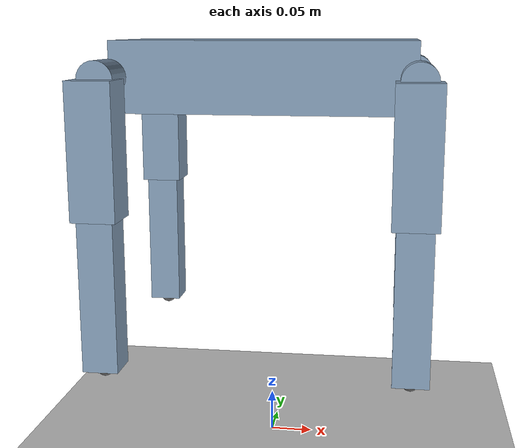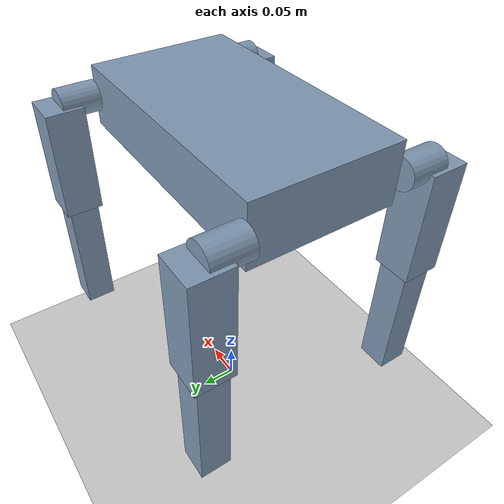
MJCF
<!-- quadruped_mujoco/models/mjcf/yobotics.xml -->
<mujoco model="yobotics">
    <compiler
        angle="degree"
        inertiafromgeom="true"
        coordinate="local"
        meshdir="../meshes/"
    />

    <option
        timestep="0.001"
        iterations="50"
        solver="Newton"
        tolerance="1e-10"
        gravity="0 0 -9.81"
    />

    <default>
        <joint limited="true" damping="0.1" armature="0.01"/>
        <motor ctrllimited="true" ctrlrange="-33.5 33.5"/>
        <geom contype="1" conaffinity="1" friction="1.0 0.1 0.1" rgba="0.5 0.6 0.7 1"/>
    </default>

    <asset>
        <mesh name="trunk" file="base.stl" scale="0.001 0.001 0.001"/>
        <mesh name="hip" file="hip.stl" scale="0.001 0.001 0.001"/>
        <mesh name="thigh" file="upper_leg.stl" scale="0.001 0.001 0.001"/>
        <mesh name="calf" file="lower_leg.stl" scale="0.001 0.001 0.001"/>

        <material name="black" rgba="0.0 0.0 0.0 1.0"/>
        <material name="blue" rgba="0.0 0.0 0.7 1.0"/>
        <material name="green" rgba="0.0 0.7 0.0 1.0"/>
        <material name="gray" rgba="0.5 0.5 0.5 1.0"/>
        <material name="red" rgba="0.7 0.0 0.0 1.0"/>
        <material name="white" rgba="1.0 1.0 1.0 1.0"/>
        <material name="yellow" rgba="0.7 0.7 0.0 1.0"/>
    </asset>

    <worldbody>
        <light diffuse=".5 .5 .5" pos="0 0 3" dir="0 0 -1"/>
        <geom type="plane" size="15 15 0.1" rgba="0.8 0.8 0.8 1" pos="0 0 0"/>

        <!-- Robot body -->
        <body name="trunk" pos="0 0 0.45">
            <joint type="free"/>
            <geom type="box" size="0.17 0.095 0.04" material="blue" mass="6.0"/>
            <site name="imu" pos="0 0 0" size="0.01"/>

            <!-- Front Right Leg -->
            <body name="FR_hip" pos="0.17 -0.095 0">
                <joint name="FR_hip_joint" type="hinge" axis="0 0 1" range="-40 40"/>
                <geom type="cylinder" size="0.02" fromto="0 0 0 0 -0.05 0" material="gray"/>

                <body name="FR_thigh" pos="0 -0.05 0">
                    <joint name="FR_thigh_joint" type="hinge" axis="1 0 0" range="-40 40"/>
                    <geom type="box" size="0.025 0.025 0.075" pos="0 0 -0.075" material="gray"/>

                    <body name="FR_calf" pos="0 0 -0.15">
                        <joint name="FR_calf_joint" type="hinge" axis="1 0 0" range="-40 70"/>
                        <geom type="box" size="0.02 0.02 0.085" pos="0 0 -0.085" material="gray"/>
                        <site name="FR_foot_site" pos="0 0 -0.17" size="0.01"/>
                    </body>
                </body>
            </body>

            <!-- Front Left Leg -->
            <body name="FL_hip" pos="0.17 0.095 0">
                <joint name="FL_hip_joint" type="hinge" axis="0 0 1" range="-40 40"/>
                <geom type="cylinder" size="0.02" fromto="0 0 0 0 0.05 0" material="gray"/>

                <body name="FL_thigh" pos="0 0.05 0">
                    <joint name="FL_thigh_joint" type="hinge" axis="1 0 0" range="-40 40"/>
                    <geom type="box" size="0.025 0.025 0.075" pos="0 0 -0.075" material="gray"/>

                    <body name="FL_calf" pos="0 0 -0.15">
                        <joint name="FL_calf_joint" type="hinge" axis="1 0 0" range="-40 70"/>
                        <geom type="box" size="0.02 0.02 0.085" pos="0 0 -0.085" material="gray"/>
                        <site name="FL_foot_site" pos="0 0 -0.17" size="0.01"/>
                    </body>
                </body>
            </body>

            <!-- Back Right Leg -->
            <body name="BR_hip" pos="-0.17 -0.095 0">
                <joint name="BR_hip_joint" type="hinge" axis="0 0 1" range="-40 40"/>
                <geom type="cylinder" size="0.02" fromto="0 0 0 0 -0.05 0" material="gray"/>

                <body name="BR_thigh" pos="0 -0.05 0">
                    <joint name="BR_thigh_joint" type="hinge" axis="1 0 0" range="-40 40"/>
                    <geom type="box" size="0.025 0.025 0.075" pos="0 0 -0.075" material="gray"/>

                    <body name="BR_calf" pos="0 0 -0.15">
                        <joint name="BR_calf_joint" type="hinge" axis="1 0 0" range="-40 70"/>
                        <geom type="box" size="0.02 0.02 0.085" pos="0 0 -0.085" material="gray"/>
                        <site name="BR_foot_site" pos="0 0 -0.17" size="0.01"/>
                    </body>
                </body>
            </body>

            <!-- Back Left Leg -->
            <body name="BL_hip" pos="-0.17 0.095 0">
                <joint name="BL_hip_joint" type="hinge" axis="0 0 1" range="-40 40"/>
                <geom type="cylinder" size="0.02" fromto="0 0 0 0 0.05 0" material="gray"/>

                <body name="BL_thigh" pos="0 0.05 0">
                    <joint name="BL_thigh_joint" type="hinge" axis="1 0 0" range="-40 40"/>
                    <geom type="box" size="0.025 0.025 0.075" pos="0 0 -0.075" material="gray"/>

                    <body name="BL_calf" pos="0 0 -0.15">
                        <joint name="BL_calf_joint" type="hinge" axis="1 0 0" range="-40 70"/>
                        <geom type="box" size="0.02 0.02 0.085" pos="0 0 -0.085" material="gray"/>
                        <site name="BL_foot_site" pos="0 0 -0.17" size="0.01"/>
                    </body>
                </body>
            </body>
        </body>
    </worldbody>

    <actuator>
        <!-- Front Right Leg -->
        <position name="FR_hip_pos" joint="FR_hip_joint" kp="100" ctrlrange="-40 40"/>
        <position name="FR_thigh_pos" joint="FR_thigh_joint" kp="100" ctrlrange="-40 40"/>
        <position name="FR_calf_pos" joint="FR_calf_joint" kp="100" ctrlrange="-40 70"/>
        <velocity name="FR_hip_vel" joint="FR_hip_joint" kv="1"/>
        <velocity name="FR_thigh_vel" joint="FR_thigh_joint" kv="1"/>
        <velocity name="FR_calf_vel" joint="FR_calf_joint" kv="1"/>

        <!-- Front Left Leg -->
        <position name="FL_hip_pos" joint="FL_hip_joint" kp="100" ctrlrange="-40 40"/>
        <position name="FL_thigh_pos" joint="FL_thigh_joint" kp="100" ctrlrange="-40 40"/>
        <position name="FL_calf_pos" joint="FL_calf_joint" kp="100" ctrlrange="-40 70"/>
        <velocity name="FL_hip_vel" joint="FL_hip_joint" kv="1"/>
        <velocity name="FL_thigh_vel" joint="FL_thigh_joint" kv="1"/>
        <velocity name="FL_calf_vel" joint="FL_calf_joint" kv="1"/>

        <!-- Back Right Leg -->
        <position name="BR_hip_pos" joint="BR_hip_joint" kp="100" ctrlrange="-40 40"/>
        <position name="BR_thigh_pos" joint="BR_thigh_joint" kp="100" ctrlrange="-40 40"/>
        <position name="BR_calf_pos" joint="BR_calf_joint" kp="100" ctrlrange="-40 70"/>
        <velocity name="BR_hip_vel" joint="BR_hip_joint" kv="1"/>
        <velocity name="BR_thigh_vel" joint="BR_thigh_joint" kv="1"/>
        <velocity name="BR_calf_vel" joint="BR_calf_joint" kv="1"/>

        <!-- Back Left Leg -->
        <position name="BL_hip_pos" joint="BL_hip_joint" kp="100" ctrlrange="-40 40"/>
        <position name="BL_thigh_pos" joint="BL_thigh_joint" kp="100" ctrlrange="-40 40"/>
        <position name="BL_calf_pos" joint="BL_calf_joint" kp="100" ctrlrange="-40 70"/>
        <velocity name="BL_hip_vel" joint="BL_hip_joint" kv="1"/>
        <velocity name="BL_thigh_vel" joint="BL_thigh_joint" kv="1"/>
        <velocity name="BL_calf_vel" joint="BL_calf_joint" kv="1"/>
    </actuator>

    <sensor>
        <accelerometer name="trunk_accel" site="imu"/>
        <gyro name="trunk_gyro" site="imu"/>
        <force name="FR_foot_force" site="FR_foot_site"/>
        <force name="FL_foot_force" site="FL_foot_site"/>
        <force name="BR_foot_force" site="BR_foot_site"/>
        <force name="BL_foot_force" site="BL_foot_site"/>
    </sensor>
</mujoco>
